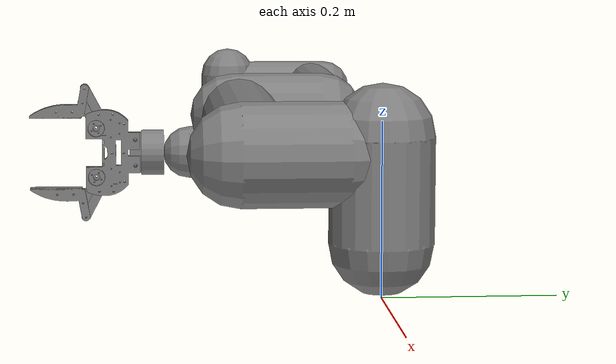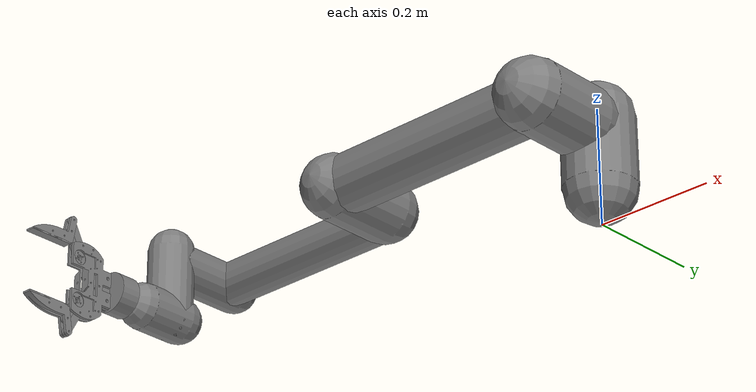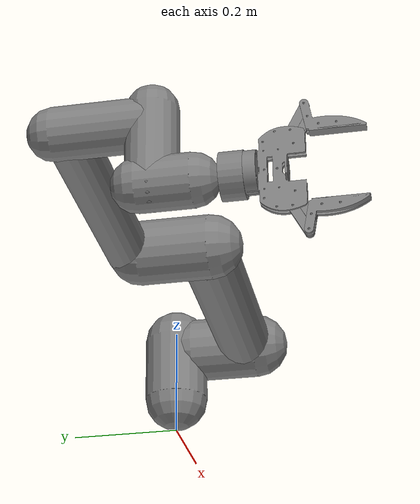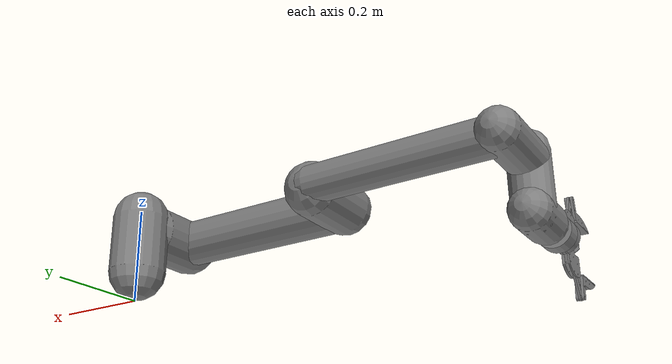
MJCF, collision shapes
<mujoco model="ur5e_magpie">
  <compiler angle="radian" meshdir="../meshes/" autolimits="true"/>

   <option timestep="0.003"/>

  <default>
    <!-- UR5E defaults -->
    <default class="ur5e">
      <material specular="0.5" shininess="0.25"/>
      <joint axis="0 1 0" range="-6.28319 6.28319" armature="0.1" damping="2"/>
      <general gaintype="fixed" biastype="affine" ctrlrange="-6.2831 6.2831" gainprm="2000" biasprm="0 -2000 -400"
        forcerange="-150 150"/>
      <default class="size3">
        <default class="size3_limited">
          <joint range="-3.1415 3.1415"/>
          <general ctrlrange="-3.1415 3.1415"/>
        </default>
      </default>
      <default class="size1">
        <general gainprm="500" biasprm="0 -500 -100" forcerange="-28 28"/>
      </default>
      <default class="visual">
        <geom type="mesh" contype="0" conaffinity="0" group="2"/>
      </default>
      <default class="collision">
        <geom type="capsule" group="3"/>
        <default class="eef_collision">
          <geom type="cylinder"/>
        </default>

        <!-- left finger collision boxes -->
        <default class="pad_box1">
          <geom mass="0" type="box" pos="0.003 -0.02227 0.0113" size="0.008 0.0015 0.01" friction="0.6"
            solimp="0.95 0.99 0.001" solref="0.004 1" priority="1" rgba="0.55 0.55 0.55 1"/>
        </default>
        <default class="pad_box2">
          <geom mass="0" type="box" pos="0.003 -0.02227 0.0313" size="0.008 0.0015 0.01" friction="0.6"
            solimp="0.95 0.99 0.001" solref="0.004 1" priority="1" rgba="0.45 0.45 0.45 1"/>
        </default>
        <default class="pad_box3">
          <geom mass="0" type="box" pos="0.003 -0.02227 0.0513" size="0.008 0.0015 0.01" friction="0.6"
            solimp="0.95 0.99 0.001" solref="0.004 1" priority="1" rgba="0.55 0.55 0.55 1"/>
        </default>
        <default class="pad_box4">
          <geom mass="0" type="box" pos="0.003 -0.02227 0.0713" size="0.008 0.0015 0.01" friction="0.6"
            solimp="0.95 0.99 0.001" solref="0.004 1" priority="1" rgba="0.45 0.45 0.45 1"/>
        </default>

        <!-- right finger collision boxes -->
        <default class="pad_box5">
          <geom mass="0" type="box" pos="0.003 0.02227 0.0113" size="0.008 0.0015 0.01" friction="0.6"
            solimp="0.95 0.99 0.001" solref="0.004 1" priority="1" rgba="0.55 0.55 0.55 1"/>
        </default>
        <default class="pad_box6">
          <geom mass="0" type="box" pos="0.003 0.02227 0.0313" size="0.008 0.0015 0.01" friction="0.6"
            solimp="0.95 0.99 0.001" solref="0.004 1" priority="1" rgba="0.45 0.45 0.45 1"/>
        </default>
        <default class="pad_box7">
          <geom mass="0" type="box" pos="0.003 0.02227 0.0513" size="0.008 0.0015 0.01" friction="0.6"
            solimp="0.95 0.99 0.001" solref="0.004 1" priority="1" rgba="0.55 0.55 0.55 1"/>
        </default>
        <default class="pad_box8">
          <geom mass="0" type="box" pos="0.003 0.02227 0.0713" size="0.008 0.0015 0.01" friction="0.6"
            solimp="0.95 0.99 0.001" solref="0.004 1" priority="1" rgba="0.45 0.45 0.45 1"/>
        </default>

      </default>
      <site size="0.001" rgba="0.5 0.5 0.5 0.3" group="4"/>
    </default>

    <!-- Magpie gripper defaults -->
    <default class="magpie">
      <joint axis="1 0 0" armature="0.001" damping="0.01"/>
      <default class="magpie_crank">
        <joint armature="0.005" damping="0.1"/>
      </default>
    </default>
  </default>

  <asset>
    <!-- UR5E materials -->
    <material class="ur5e" name="black" rgba="0.033 0.033 0.033 1"/>
    <material class="ur5e" name="jointgray" rgba="0.278 0.278 0.278 1"/>
    <material class="ur5e" name="linkgray" rgba="0.82 0.82 0.82 1"/>
    <material class="ur5e" name="urblue" rgba="0.49 0.678 0.8 1"/>

    <!-- UR5E meshes -->
    <mesh file="ur5e/base_0.obj"/>
    <mesh file="ur5e/base_1.obj"/>
    <mesh file="ur5e/shoulder_0.obj"/>
    <mesh file="ur5e/shoulder_1.obj"/>
    <mesh file="ur5e/shoulder_2.obj"/>
    <mesh file="ur5e/upperarm_0.obj"/>
    <mesh file="ur5e/upperarm_1.obj"/>
    <mesh file="ur5e/upperarm_2.obj"/>
    <mesh file="ur5e/upperarm_3.obj"/>
    <mesh file="ur5e/forearm_0.obj"/>
    <mesh file="ur5e/forearm_1.obj"/>
    <mesh file="ur5e/forearm_2.obj"/>
    <mesh file="ur5e/forearm_3.obj"/>
    <mesh file="ur5e/wrist1_0.obj"/>
    <mesh file="ur5e/wrist1_1.obj"/>
    <mesh file="ur5e/wrist1_2.obj"/>
    <mesh file="ur5e/wrist2_0.obj"/>
    <mesh file="ur5e/wrist2_1.obj"/>
    <mesh file="ur5e/wrist2_2.obj"/>
    <mesh file="ur5e/wrist3.obj"/>

    <!-- Magpie gripper meshes (prefixed to avoid name conflicts) -->
    <mesh name="magpie_mount" file="magpie/mount.stl" scale="0.001 0.001 0.001"/>
    <mesh name="magpie_base_bot" file="magpie/base_bot.stl" scale="0.001 0.001 0.001"/>
    <mesh name="magpie_base_top" file="magpie/base_top.stl" scale="0.001 0.001 0.001"/>
    <mesh name="magpie_left_crank" file="magpie/left_crank.stl" scale="0.001 0.001 0.001"/>
    <mesh name="magpie_right_crank" file="magpie/right_crank.stl" scale="0.001 0.001 0.001"/>
    <mesh name="magpie_left_finger" file="magpie/left_finger_combined.stl" scale="0.001 0.001 0.001"/>
    <mesh name="magpie_right_finger" file="magpie/right_finger_combined.stl" scale="0.001 0.001 0.001"/>
    <mesh name="magpie_left_rocker" file="magpie/left_rocker.stl" scale="0.001 0.001 0.001"/>
    <mesh name="magpie_right_rocker" file="magpie/right_rocker.stl" scale="0.001 0.001 0.001"/>
  </asset>

  <worldbody>
    <light name="spotlight" mode="targetbodycom" target="wrist_2_link" pos="0 -1 2"/>
    <body name="base" quat="0 0 0 -1" childclass="ur5e">
      <inertial mass="4.0" pos="0 0 0" diaginertia="0.00443333156 0.00443333156 0.0072"/>
      <geom mesh="base_0" material="black" class="visual"/>
      <geom mesh="base_1" material="jointgray" class="visual"/>
      <body name="shoulder_link" gravcomp="1" pos="0 0 0.163">
        <inertial mass="3.7" pos="0 0 0" diaginertia="0.0102675 0.0102675 0.00666"/>
        <joint name="shoulder_pan_joint" class="size3" axis="0 0 1"/>
        <geom mesh="shoulder_0" material="urblue" class="visual"/>
        <geom mesh="shoulder_1" material="black" class="visual"/>
        <geom mesh="shoulder_2" material="jointgray" class="visual"/>
        <geom class="collision" size="0.06 0.06" pos="0 0 -0.04"/>
        <body name="upper_arm_link" gravcomp="1" pos="0 0.138 0" quat="1 0 1 0">
          <inertial mass="8.393" pos="0 0 0.2125" diaginertia="0.133886 0.133886 0.0151074"/>
          <joint name="shoulder_lift_joint" class="size3"/>
          <geom mesh="upperarm_0" material="linkgray" class="visual"/>
          <geom mesh="upperarm_1" material="black" class="visual"/>
          <geom mesh="upperarm_2" material="jointgray" class="visual"/>
          <geom mesh="upperarm_3" material="urblue" class="visual"/>
          <geom class="collision" pos="0 -0.04 0" quat="1 1 0 0" size="0.06 0.06"/>
          <geom class="collision" size="0.05 0.2" pos="0 0 0.2"/>
          <body name="forearm_link" gravcomp="1" pos="0 -0.131 0.425">
            <inertial mass="2.275" pos="0 0 0.196" diaginertia="0.0311796 0.0311796 0.004095"/>
            <joint name="elbow_joint" class="size3_limited"/>
            <geom mesh="forearm_0" material="urblue" class="visual"/>
            <geom mesh="forearm_1" material="linkgray" class="visual"/>
            <geom mesh="forearm_2" material="black" class="visual"/>
            <geom mesh="forearm_3" material="jointgray" class="visual"/>
            <geom class="collision" pos="0 0.08 0" quat="1 1 0 0" size="0.055 0.06"/>
            <geom class="collision" size="0.038 0.19" pos="0 0 0.2"/>
            <body name="wrist_1_link" gravcomp="1" pos="0 0 0.392" quat="1 0 1 0">
              <inertial mass="1.219" pos="0 0.127 0" diaginertia="0.0025599 0.0025599 0.0021942"/>
              <joint name="wrist_1_joint" class="size1"/>
              <geom mesh="wrist1_0" material="black" class="visual"/>
              <geom mesh="wrist1_1" material="urblue" class="visual"/>
              <geom mesh="wrist1_2" material="jointgray" class="visual"/>
              <geom class="collision" pos="0 0.05 0" quat="1 1 0 0" size="0.04 0.07"/>
              <body name="wrist_2_link" gravcomp="1" pos="0 0.127 0">
                <inertial mass="1.219" pos="0 0 0.1" diaginertia="0.0025599 0.0025599 0.0021942"/>
                <joint name="wrist_2_joint" axis="0 0 1" class="size1"/>
                <geom mesh="wrist2_0" material="black" class="visual"/>
                <geom mesh="wrist2_1" material="urblue" class="visual"/>
                <geom mesh="wrist2_2" material="jointgray" class="visual"/>
                <geom class="collision" size="0.04 0.06" pos="0 0 0.04"/>
                <geom class="collision" pos="0 0.02 0.1" quat="1 1 0 0" size="0.04 0.04"/>
                <body name="wrist_3_link" gravcomp="1" pos="0 0 0.1">
                  <inertial mass="0.1889" pos="0 0.0771683 0" quat="1 0 0 1"
                    diaginertia="0.000132134 9.90863e-05 9.90863e-05"/>
                  <joint name="wrist_3_joint" class="size1"/>
                  <geom material="linkgray" mesh="wrist3" class="visual"/>
                  <!-- Force/torque sensor site at wrist -->
                  <geom name="optoforce" size="0.035 0.0175" pos="0 0.1165 0" quat="0 0 0.7071068 0.707168" density="0" type="cylinder" class="visual" />
                  <geom name="optoforce_collision" size="0.035 0.0175" pos="0 0.1165 0" quat="0 0 0.7071068 0.707168" density="0" type="cylinder" class="collision" />
                  <site name="wrist_ft" pos="0 0.12 0" size="0.01" rgba="1 1 0 0.5" group="3"/>

                  <!-- Magpie gripper attached to UR5E wrist -->
                  <!-- Attachment frame: UR5E Y-axis out, Magpie Z-axis out -->
                  <!-- quat rotates gripper so its Z aligns with UR5E +Y (-90° about X) -->
                  <body name="gripper_attachment" gravcomp="1" pos="0 0.134 0" quat="0.7071068 -0.7071068 0 0">
                    <include file="magpie_gripper.xml"/>
                  </body>

                </body>
              </body>
            </body>
          </body>
        </body>
      </body>
    </body>
  </worldbody>

  <!-- Equality constraints for magpie 4-bar loop closure -->
  <equality>
    <connect name="left_4bar_close" body1="base_top" body2="left_rocker"
             anchor="-0.00075 0.060 0.065" solimp="0.95 0.99 0.001" solref="0.005 1"/>
    <connect name="right_4bar_close" body1="base_top" body2="right_rocker"
             anchor="-0.00075 -0.060 0.065" solimp="0.95 0.99 0.001" solref="0.005 1"/>
  </equality>

  <actuator>
      <!-- UR5E arm actuators -->

    <!-- End-effector 6D Cartesian Space Control -->
    <general site="eeff" refsite="world" ctrlrange="-1 1" ctrllimited="true" gainprm="10" gear="1 0 0 0 0 0"/>
    <general site="eeff" refsite="world" ctrlrange="-1 1" ctrllimited="true" gainprm="10" gear="0 1 0 0 0 0"/>
    <general site="eeff" refsite="world" ctrlrange="-1 1" ctrllimited="true" gainprm="10" gear="0 0 1 0 0 0"/>
    <general site="eeff" refsite="world" ctrlrange="-1 1" ctrllimited="true" gainprm="1" gear="0 0 0 1 0 0"/>
    <general site="eeff" refsite="world" ctrlrange="-1 1" ctrllimited="true" gainprm="1" gear="0 0 0 0 1 0"/>
    <general site="eeff" refsite="world" ctrlrange="-1 1" ctrllimited="true" gainprm="1" gear="0 0 0 0 0 1"/>

    <!-- Magpie gripper actuators -->
    <position name="left_finger_actuator" joint="left_hinge_1" ctrlrange="-0.035 2.70" kp="10"/>
    <position name="right_finger_actuator" joint="right_hinge_1" ctrlrange="-2.70 0.035" kp="10"/>
  </actuator>
</mujoco>

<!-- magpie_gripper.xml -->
<!-- Magpie gripper body hierarchy - designed to be included in other models -->
<!-- Include this inside a parent body to attach the gripper -->
<!-- Requires mesh assets: magpie_mount, magpie_base_bot, magpie_base_top, -->
<!--   magpie_left_crank, magpie_right_crank, magpie_left_finger, magpie_right_finger, -->
<!--   magpie_left_rocker, magpie_right_rocker -->

<body name="mount" gravcomp="1">
  <site name="eeff" pos="-0.004 0 0.193" group="3"/>
  <geom type="mesh" class="visual" mesh="magpie_mount" xyaxes="0 -1 0 1 0 0"/>
  <geom type="mesh" class="collision" mesh="magpie_mount" xyaxes="0 -1 0 1 0 0"/>
  <body name="base_bot" gravcomp="1">
    <geom type="mesh" class="visual" mesh="magpie_base_bot" xyaxes="0 -1 0 1 0 0"/>
    <geom type="mesh" class="collision" mesh="magpie_base_bot" xyaxes="0 -1 0 1 0 0"/>
    <body name="base_top" gravcomp="1">
      <geom type="mesh" class="visual" mesh="magpie_base_top" xyaxes="0 -1 0 1 0 0"/>
      <geom type="mesh" class="collision" mesh="magpie_base_top" xyaxes="0 -1 0 1 0 0"/>

      <!-- Left 4-bar mechanism: base_top -> crank -> finger -> rocker -->
      <!-- Pivots: 1=crank-base(0.00175,0.038,0.069), 2=finger-inner(-0.00675,0.077824,0.089953) -->
      <!--         3=finger-outer(-0.00675,0.099824,0.085954), 4=rocker-base(-0.00075,0.060,0.065) -->
      <body name="left_crank" gravcomp="1" pos="0.00175 0.038 0.069">
        <joint name="left_hinge_1" pos="0 0 0" axis="1 0 0" range="-0.035 2.05"/>
        <geom type="mesh" class="visual" mesh="magpie_left_crank" pos="-0.00175 -0.038 -0.069" xyaxes="0 -1 0 1 0 0"/>
        <geom type="mesh" class="collision" mesh="magpie_left_crank" pos="-0.00175 -0.038 -0.069" xyaxes="0 -1 0 1 0 0"/>
        <body name="left_finger_combined" gravcomp="1" pos="-0.0085 0.039824 0.020953">
          <joint name="left_hinge_2" pos="0 0 0" axis="1 0 0"/>
          <geom type="mesh" class="visual" mesh="magpie_left_finger" pos="0.00675 -0.077824 -0.089953" xyaxes="0 -1 0 1 0 0"/>
          <geom type="mesh" class="collision" mesh="magpie_left_finger" pos="0.00675 -0.077824 -0.089953" xyaxes="0 -1 0 1 0 0"/>
            <geom class="pad_box1" name="left_pad1"/>
            <geom class="pad_box2" name="left_pad2"/>
            <geom class="pad_box3" name="left_pad3"/>
            <geom class="pad_box4" name="left_pad4"/>
            <site name="touch_left" type="box" pos="0.003 -0.02227 0.0413" size="0.008 0.0016 0.04" rgba="1 0 0 0.5" group="4" />
            <site name="tip_left" type="box" pos="0.003 -0.02027 0.0763" size="0.008 0.0026 0.005" rgba="1 0 0 0.5" group="4" />

          <body name="left_rocker" gravcomp="1" pos="0 0.022 -0.003999">
            <joint name="left_hinge_3" pos="0 0 0" axis="1 0 0"/>
            <geom type="mesh" class="visual" mesh="magpie_left_rocker" pos="0.00675 -0.099824 -0.085954" xyaxes="0 -1 0 1 0 0"/>
            <geom type="mesh" class="collision" mesh="magpie_left_rocker" pos="0.00675 -0.099824 -0.085954" xyaxes="0 -1 0 1 0 0"/>
          </body>
        </body>
      </body>

      <!-- Right 4-bar mechanism: base_top -> crank -> finger -> rocker -->
      <!-- Pivots: 1=crank-base(0.00175,-0.038,0.069), 2=finger-inner(-0.00675,-0.077824,0.089953) -->
      <!--         3=finger-outer(-0.00675,-0.099824,0.085954), 4=rocker-base(-0.00075,-0.060,0.065) -->
      <body name="right_crank" gravcomp="1" pos="0.00175 -0.038 0.069">
        <joint name="right_hinge_1" pos="0 0 0" axis="1 0 0" range="-2.05 0.035"/>
        <geom type="mesh" class="visual" mesh="magpie_right_crank" pos="-0.00175 0.038 -0.069" xyaxes="0 -1 0 1 0 0"/>
        <geom type="mesh" class="collision" mesh="magpie_right_crank" pos="-0.00175 0.038 -0.069" xyaxes="0 -1 0 1 0 0"/>
        <body name="right_finger_combined" gravcomp="1" pos="-0.0085 -0.039824 0.020953">
          <joint name="right_hinge_2" pos="0 0 0" axis="1 0 0"/>
          <geom type="mesh" class="visual" mesh="magpie_right_finger" pos="0.00675 0.077824 -0.089953" xyaxes="0 -1 0 1 0 0"/>
          <geom type="mesh" class="collision" mesh="magpie_right_finger" pos="0.00675 0.077824 -0.089953" xyaxes="0 -1 0 1 0 0"/>
          <geom class="pad_box5" name="right_pad1"/>
          <geom class="pad_box6" name="right_pad2"/>
          <geom class="pad_box7" name="right_pad3"/>
          <geom class="pad_box8" name="right_pad4"/>
          <site name="touch_right" type="box" pos="0.003 0.02227 0.0413" size="0.008 0.0016 0.04" rgba="0 1 0 0.5" group="4" />
          <site name="tip_right" type="box" pos="0.003 0.02027 0.0763" size="0.008 0.0026 0.005" rgba="0 1 0 0.5" group="4" />

          <body name="right_rocker" gravcomp="1" pos="0 -0.022 -0.003999">
            <joint name="right_hinge_3" pos="0 0 0" axis="1 0 0"/>
            <geom type="mesh" class="visual" mesh="magpie_right_rocker" pos="0.00675 0.099824 -0.085954" xyaxes="0 -1 0 1 0 0"/>
            <geom type="mesh" class="collision" mesh="magpie_right_rocker" pos="0.00675 0.099824 -0.085954" xyaxes="0 -1 0 1 0 0"/>
          </body>
        </body>
      </body>

    </body>
  </body>
</body>
